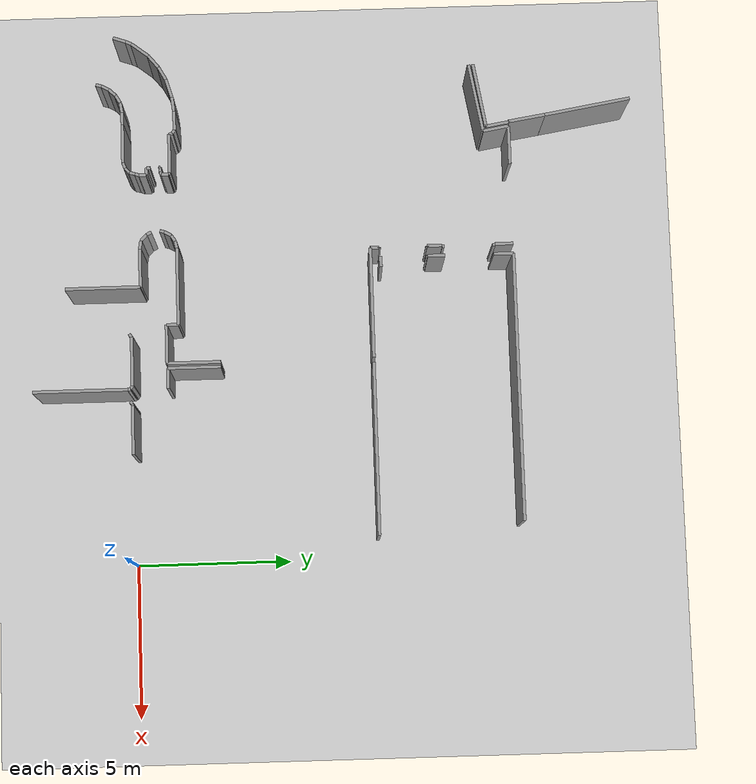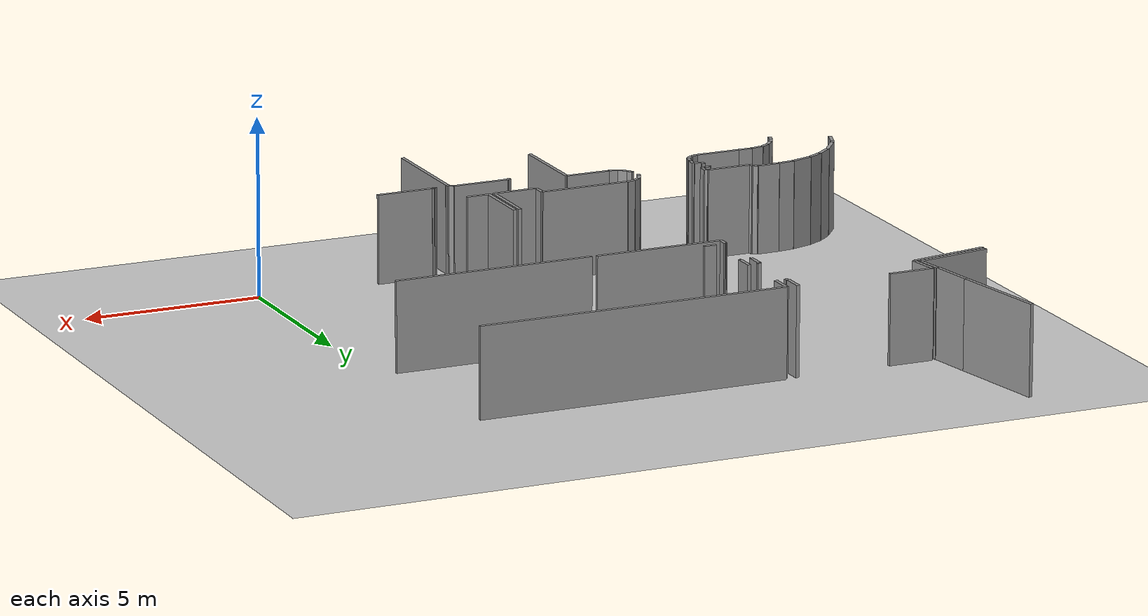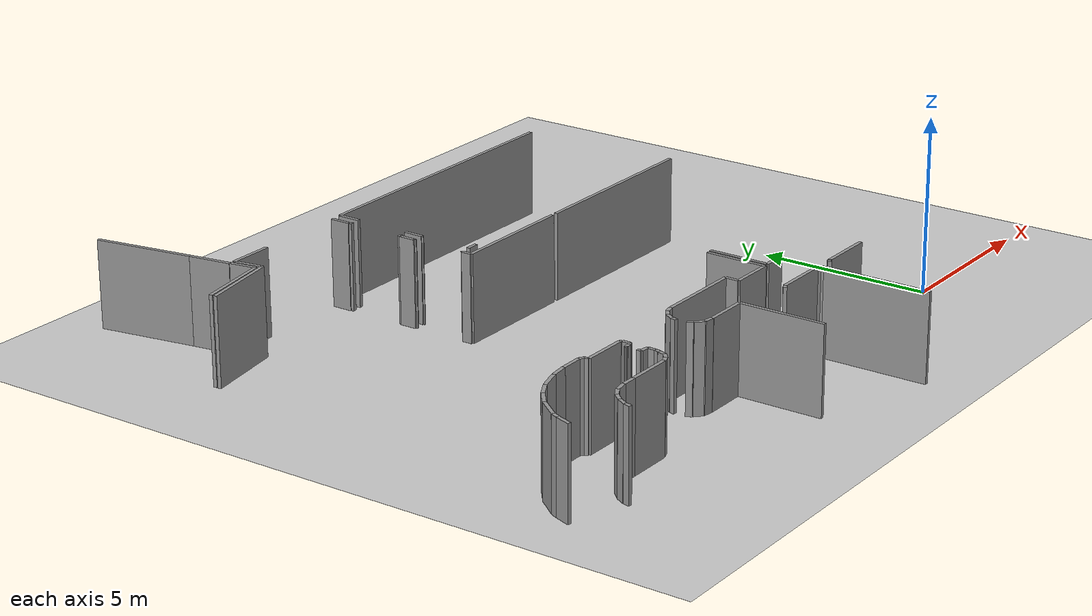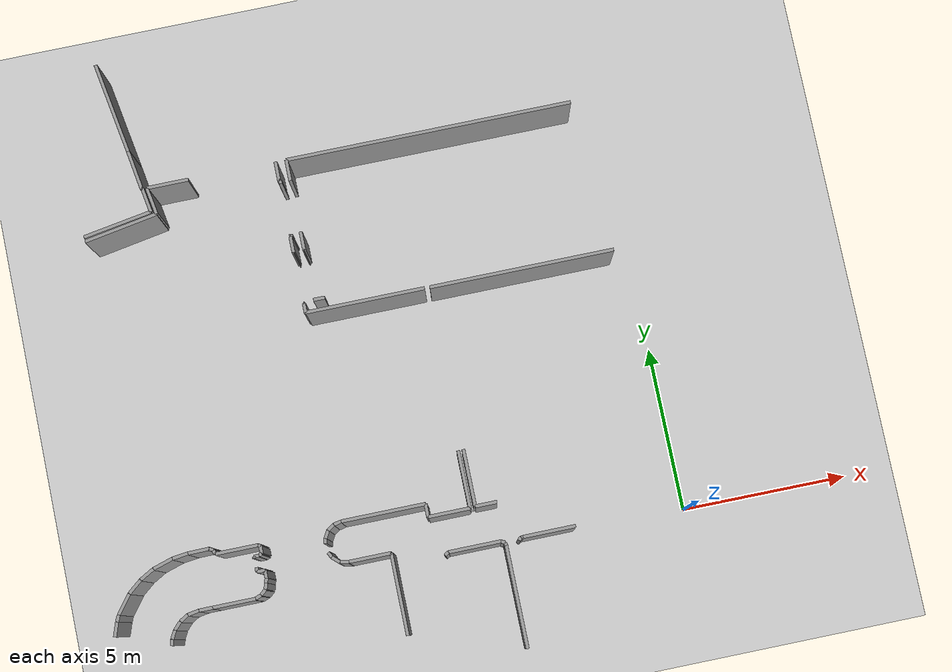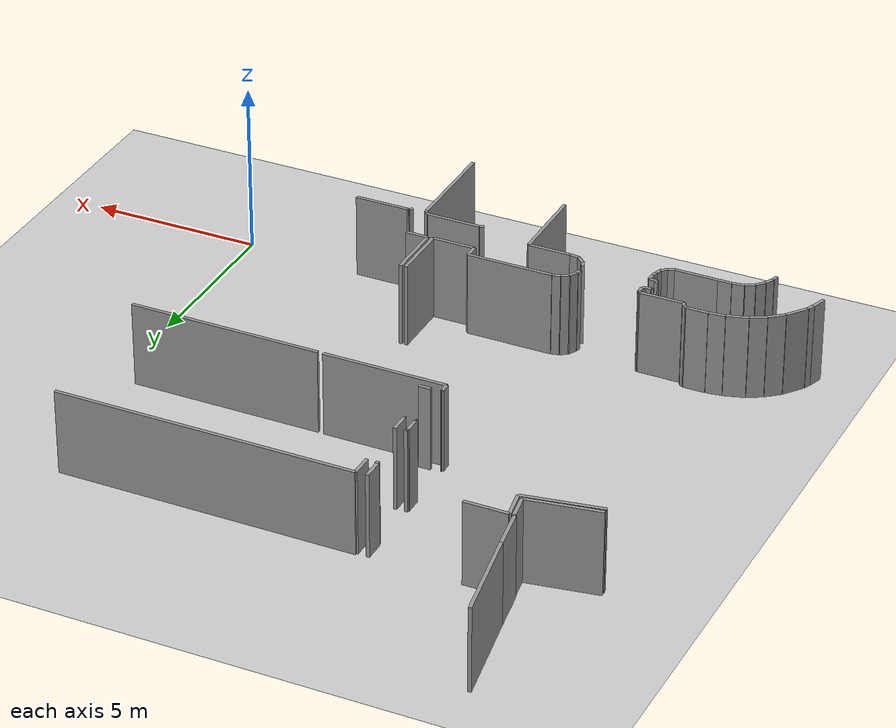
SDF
<sdf version="1.6">
 <world name="default">
  <model name="ground_plane">
   <static>1</static>
   <link name="link">
    <collision name="collision">
     <geometry><plane><normal>0 0 1</normal><size>100 100</size></plane></geometry>
     <surface><friction><ode><mu>100</mu><mu2>50</mu2></ode></friction></surface>
    </collision>
    <visual name="visual">
     <cast_shadows>0</cast_shadows>
     <geometry><plane><normal>0 0 1</normal><size>100 100</size></plane></geometry>
     <material>
      <script><uri>file://media/materials/scripts/gazebo.material</uri><name>Gazebo/Grey</name></script>
     </material>
    </visual>
   </link>
  </model>
  <model name="0510032261_A_40_1_103">
   <static>1</static>
   <link name="Wall_86">
    <collision name="Wall_86_Collision">
     <geometry><box><size>2.26686902757 0.1 2.5</size></box></geometry>
     <pose>1.13343451379 0 1.25 0 0 0</pose>
    </collision>
    <visual name="Wall_86_Visual">
     <pose>1.13343451379 0 1.25 0 0 0</pose>
     <geometry><box><size>2.26686902757 0.1 2.5</size></box></geometry>
     <material>
      <script><uri>file://media/materials/scripts/gazebo.material</uri><name>Gazebo/Grey</name></script>
      <ambient>1 1 1 1</ambient>
     </material>
    </visual>
    <pose>33.200635324 -5.21766200762 0 0 0 0.172659018626</pose>
   </link>
   <link name="Wall_87">
    <collision name="Wall_87_Collision">
     <geometry><box><size>0.841072962729 0.1 2.5</size></box></geometry>
     <pose>0.420536481364 0 1.25 0 0 0</pose>
    </collision>
    <visual name="Wall_87_Visual">
     <pose>0.420536481364 0 1.25 0 0 0</pose>
     <geometry><box><size>0.841072962729 0.1 2.5</size></box></geometry>
     <material>
      <script><uri>file://media/materials/scripts/gazebo.material</uri><name>Gazebo/Grey</name></script>
      <ambient>1 1 1 1</ambient>
     </material>
    </visual>
    <pose>35.4337992376 -4.82820838628 0 0 0 1.73974500082</pose>
   </link>
   <link name="Wall_88">
    <collision name="Wall_88_Collision">
     <geometry><box><size>1.26073697586 0.1 2.5</size></box></geometry>
     <pose>0.630368487929 0 1.25 0 0 0</pose>
    </collision>
    <visual name="Wall_88_Visual">
     <pose>0.630368487929 0 1.25 0 0 0</pose>
     <geometry><box><size>1.26073697586 0.1 2.5</size></box></geometry>
     <material>
      <script><uri>file://media/materials/scripts/gazebo.material</uri><name>Gazebo/Grey</name></script>
      <ambient>1 1 1 1</ambient>
     </material>
    </visual>
    <pose>35.2923761118 -3.99911054638 0 0 0 0.0</pose>
   </link>
   <link name="Wall_89">
    <collision name="Wall_89_Collision">
     <geometry><box><size>0.587420584498 0.1 2.5</size></box></geometry>
     <pose>0.293710292249 0 1.25 0 0 0</pose>
    </collision>
    <visual name="Wall_89_Visual">
     <pose>0.293710292249 0 1.25 0 0 0</pose>
     <geometry><box><size>0.587420584498 0.1 2.5</size></box></geometry>
     <material>
      <script><uri>file://media/materials/scripts/gazebo.material</uri><name>Gazebo/Grey</name></script>
      <ambient>1 1 1 1</ambient>
     </material>
    </visual>
    <pose>39.2010165184 -3.99911054638 0 0 0 -1.57079632679</pose>
   </link>
   <link name="Wall_90">
    <collision name="Wall_90_Collision">
     <geometry><box><size>0.0260482846252 0.1 2.5</size></box></geometry>
     <pose>0.0130241423126 0 1.25 0 0 0</pose>
    </collision>
    <visual name="Wall_90_Visual">
     <pose>0.0130241423126 0 1.25 0 0 0</pose>
     <geometry><box><size>0.0260482846252 0.1 2.5</size></box></geometry>
     <material>
      <script><uri>file://media/materials/scripts/gazebo.material</uri><name>Gazebo/Grey</name></script>
      <ambient>1 1 1 1</ambient>
     </material>
    </visual>
    <pose>39.2010165184 -4.58653113088 0 0 0 0.0</pose>
   </link>
   <link name="Wall_91">
    <collision name="Wall_91_Collision">
     <geometry><box><size>0.0874205844981 0.1 2.5</size></box></geometry>
     <pose>0.043710292249 0 1.25 0 0 0</pose>
    </collision>
    <visual name="Wall_91_Visual">
     <pose>0.043710292249 0 1.25 0 0 0</pose>
     <geometry><box><size>0.0874205844981 0.1 2.5</size></box></geometry>
     <material>
      <script><uri>file://media/materials/scripts/gazebo.material</uri><name>Gazebo/Grey</name></script>
      <ambient>1 1 1 1</ambient>
     </material>
    </visual>
    <pose>39.227064803 -4.58653113088 0 0 0 -1.57079632679</pose>
   </link>
   <link name="Wall_92">
    <collision name="Wall_92_Collision">
     <geometry><box><size>0.0689961880559 0.1 2.5</size></box></geometry>
     <pose>0.034498094028 0 1.25 0 0 0</pose>
    </collision>
    <visual name="Wall_92_Visual">
     <pose>0.034498094028 0 1.25 0 0 0</pose>
     <geometry><box><size>0.0689961880559 0.1 2.5</size></box></geometry>
     <material>
      <script><uri>file://media/materials/scripts/gazebo.material</uri><name>Gazebo/Grey</name></script>
      <ambient>1 1 1 1</ambient>
     </material>
    </visual>
    <pose>39.227064803 -6.2416772554 0 0 0 -1.57079632679</pose>
   </link>
   <link name="Wall_93">
    <collision name="Wall_93_Collision">
     <geometry><box><size>0.0274459974587 0.1 2.5</size></box></geometry>
     <pose>0.0137229987294 0 1.25 0 0 0</pose>
    </collision>
    <visual name="Wall_93_Visual">
     <pose>0.0137229987294 0 1.25 0 0 0</pose>
     <geometry><box><size>0.0274459974587 0.1 2.5</size></box></geometry>
     <material>
      <script><uri>file://media/materials/scripts/gazebo.material</uri><name>Gazebo/Grey</name></script>
      <ambient>1 1 1 1</ambient>
     </material>
    </visual>
    <pose>39.227064803 -6.31067344346 0 0 0 3.14159265359</pose>
   </link>
   <link name="Wall_94">
    <collision name="Wall_94_Collision">
     <geometry><box><size>0.482719186785 0.1 2.5</size></box></geometry>
     <pose>0.241359593393 0 1.25 0 0 0</pose>
    </collision>
    <visual name="Wall_94_Visual">
     <pose>0.241359593393 0 1.25 0 0 0</pose>
     <geometry><box><size>0.482719186785 0.1 2.5</size></box></geometry>
     <material>
      <script><uri>file://media/materials/scripts/gazebo.material</uri><name>Gazebo/Grey</name></script>
      <ambient>1 1 1 1</ambient>
     </material>
    </visual>
    <pose>39.1996188056 -6.31067344346 0 0 0 -1.57079632679</pose>
   </link>
   <link name="Wall_95">
    <collision name="Wall_95_Collision">
     <geometry><box><size>0.0247776365947 0.1 2.5</size></box></geometry>
     <pose>0.0123888182973 0 1.25 0 0 0</pose>
    </collision>
    <visual name="Wall_95_Visual">
     <pose>0.0123888182973 0 1.25 0 0 0</pose>
     <geometry><box><size>0.0247776365947 0.1 2.5</size></box></geometry>
     <material>
      <script><uri>file://media/materials/scripts/gazebo.material</uri><name>Gazebo/Grey</name></script>
      <ambient>1 1 1 1</ambient>
     </material>
    </visual>
    <pose>39.1996188056 -6.79339263024 0 0 0 0.0</pose>
   </link>
   <link name="Wall_96">
    <collision name="Wall_96_Collision">
     <geometry><box><size>0.0193138500635 0.1 2.5</size></box></geometry>
     <pose>0.00965692503176 0 1.25 0 0 0</pose>
    </collision>
    <visual name="Wall_96_Visual">
     <pose>0.00965692503176 0 1.25 0 0 0</pose>
     <geometry><box><size>0.0193138500635 0.1 2.5</size></box></geometry>
     <material>
      <script><uri>file://media/materials/scripts/gazebo.material</uri><name>Gazebo/Grey</name></script>
      <ambient>1 1 1 1</ambient>
     </material>
    </visual>
    <pose>39.2243964422 -8.35095298602 0 0 0 3.14159265359</pose>
   </link>
   <link name="Wall_97">
    <collision name="Wall_97_Collision">
     <geometry><box><size>0.287420584498 0.1 2.5</size></box></geometry>
     <pose>0.143710292249 0 1.25 0 0 0</pose>
    </collision>
    <visual name="Wall_97_Visual">
     <pose>0.143710292249 0 1.25 0 0 0</pose>
     <geometry><box><size>0.287420584498 0.1 2.5</size></box></geometry>
     <material>
      <script><uri>file://media/materials/scripts/gazebo.material</uri><name>Gazebo/Grey</name></script>
      <ambient>1 1 1 1</ambient>
     </material>
    </visual>
    <pose>39.2050825921 -8.35095298602 0 0 0 -1.57079632679</pose>
   </link>
   <link name="Wall_98">
    <collision name="Wall_98_Collision">
     <geometry><box><size>3.59428208386 0.1 2.5</size></box></geometry>
     <pose>1.79714104193 0 1.25 0 0 0</pose>
    </collision>
    <visual name="Wall_98_Visual">
     <pose>1.79714104193 0 1.25 0 0 0</pose>
     <geometry><box><size>3.59428208386 0.1 2.5</size></box></geometry>
     <material>
      <script><uri>file://media/materials/scripts/gazebo.material</uri><name>Gazebo/Grey</name></script>
      <ambient>1 1 1 1</ambient>
     </material>
    </visual>
    <pose>39.2050825921 -8.63837357052 0 0 0 0.0</pose>
   </link>
   <link name="Wall_99">
    <collision name="Wall_99_Collision">
     <geometry><box><size>1.7249047014 0.1 2.5</size></box></geometry>
     <pose>0.862452350699 0 1.25 0 0 0</pose>
    </collision>
    <visual name="Wall_99_Visual">
     <pose>0.862452350699 0 1.25 0 0 0</pose>
     <geometry><box><size>1.7249047014 0.1 2.5</size></box></geometry>
     <material>
      <script><uri>file://media/materials/scripts/gazebo.material</uri><name>Gazebo/Grey</name></script>
      <ambient>1 1 1 1</ambient>
     </material>
    </visual>
    <pose>42.799364676 -13.5702668361 0 0 0 -1.57079632679</pose>
   </link>
   <link name="Wall_100">
    <collision name="Wall_100_Collision">
     <geometry><box><size>1.2542566709 0.1 2.5</size></box></geometry>
     <pose>0.627128335451 0 1.25 0 0 0</pose>
    </collision>
    <visual name="Wall_100_Visual">
     <pose>0.627128335451 0 1.25 0 0 0</pose>
     <geometry><box><size>1.2542566709 0.1 2.5</size></box></geometry>
     <material>
      <script><uri>file://media/materials/scripts/gazebo.material</uri><name>Gazebo/Grey</name></script>
      <ambient>1 1 1 1</ambient>
     </material>
    </visual>
    <pose>42.799364676 -15.2951715375 0 0 0 3.14159265359</pose>
   </link>
   <link name="Wall_101">
    <collision name="Wall_101_Collision">
     <geometry><box><size>0.388691232529 0.1 2.5</size></box></geometry>
     <pose>0.194345616264 0 1.25 0 0 0</pose>
    </collision>
    <visual name="Wall_101_Visual">
     <pose>0.194345616264 0 1.25 0 0 0</pose>
     <geometry><box><size>0.388691232529 0.1 2.5</size></box></geometry>
     <material>
      <script><uri>file://media/materials/scripts/gazebo.material</uri><name>Gazebo/Grey</name></script>
      <ambient>1 1 1 1</ambient>
     </material>
    </visual>
    <pose>41.5451080051 -15.2951715375 0 0 0 1.57079632679</pose>
   </link>
   <link name="Wall_102">
    <collision name="Wall_102_Collision">
     <geometry><box><size>2.51639135959 0.1 2.5</size></box></geometry>
     <pose>1.2581956798 0 1.25 0 0 0</pose>
    </collision>
    <visual name="Wall_102_Visual">
     <pose>1.2581956798 0 1.25 0 0 0</pose>
     <geometry><box><size>2.51639135959 0.1 2.5</size></box></geometry>
     <material>
      <script><uri>file://media/materials/scripts/gazebo.material</uri><name>Gazebo/Grey</name></script>
      <ambient>1 1 1 1</ambient>
     </material>
    </visual>
    <pose>41.5451080051 -14.906480305 0 0 0 3.14159265359</pose>
   </link>
   <link name="Wall_103">
    <collision name="Wall_103_Collision">
     <geometry><box><size>0.234006937741 0.1 2.5</size></box></geometry>
     <pose>0.117003468871 0 1.25 0 0 0</pose>
    </collision>
    <visual name="Wall_103_Visual">
     <pose>0.117003468871 0 1.25 0 0 0</pose>
     <geometry><box><size>0.234006937741 0.1 2.5</size></box></geometry>
     <material>
      <script><uri>file://media/materials/scripts/gazebo.material</uri><name>Gazebo/Grey</name></script>
      <ambient>1 1 1 1</ambient>
     </material>
    </visual>
    <pose>39.0287166455 -14.906480305 0 0 0 -2.9209801328</pose>
   </link>
   <link name="Wall_104">
    <collision name="Wall_104_Collision">
     <geometry><box><size>0.231687956319 0.1 2.5</size></box></geometry>
     <pose>0.11584397816 0 1.25 0 0 0</pose>
    </collision>
    <visual name="Wall_104_Visual">
     <pose>0.11584397816 0 1.25 0 0 0</pose>
     <geometry><box><size>0.231687956319 0.1 2.5</size></box></geometry>
     <material>
      <script><uri>file://media/materials/scripts/gazebo.material</uri><name>Gazebo/Grey</name></script>
      <ambient>1 1 1 1</ambient>
     </material>
    </visual>
    <pose>38.8003811944 -14.9576874206 0 0 0 -2.57351742863</pose>
   </link>
   <link name="Wall_105">
    <collision name="Wall_105_Collision">
     <geometry><box><size>0.253036084387 0.1 2.5</size></box></geometry>
     <pose>0.126518042193 0 1.25 0 0 0</pose>
    </collision>
    <visual name="Wall_105_Visual">
     <pose>0.126518042193 0 1.25 0 0 0</pose>
     <geometry><box><size>0.253036084387 0.1 2.5</size></box></geometry>
     <material>
      <script><uri>file://media/materials/scripts/gazebo.material</uri><name>Gazebo/Grey</name></script>
      <ambient>1 1 1 1</ambient>
     </material>
    </visual>
    <pose>38.6050825921 -15.0823379924 0 0 0 -2.08589388017</pose>
   </link>
   <link name="Wall_106">
    <collision name="Wall_106_Collision">
     <geometry><box><size>0.146028198736 0.1 2.5</size></box></geometry>
     <pose>0.073014099368 0 1.25 0 0 0</pose>
    </collision>
    <visual name="Wall_106_Visual">
     <pose>0.073014099368 0 1.25 0 0 0</pose>
     <geometry><box><size>0.146028198736 0.1 2.5</size></box></geometry>
     <material>
      <script><uri>file://media/materials/scripts/gazebo.material</uri><name>Gazebo/Grey</name></script>
      <ambient>1 1 1 1</ambient>
     </material>
    </visual>
    <pose>38.4804320203 -15.3025412961 0 0 0 -1.82949299808</pose>
   </link>
   <link name="Wall_107">
    <collision name="Wall_107_Collision">
     <geometry><box><size>0.0415501905972 0.1 2.5</size></box></geometry>
     <pose>0.0207750952986 0 1.25 0 0 0</pose>
    </collision>
    <visual name="Wall_107_Visual">
     <pose>0.0207750952986 0 1.25 0 0 0</pose>
     <geometry><box><size>0.0415501905972 0.1 2.5</size></box></geometry>
     <material>
      <script><uri>file://media/materials/scripts/gazebo.material</uri><name>Gazebo/Grey</name></script>
      <ambient>1 1 1 1</ambient>
     </material>
    </visual>
    <pose>36.3288437103 -15.4437102922 0 0 0 1.57079632679</pose>
   </link>
   <link name="Wall_108">
    <collision name="Wall_108_Collision">
     <geometry><box><size>0.153843208513 0.1 2.5</size></box></geometry>
     <pose>0.0769216042564 0 1.25 0 0 0</pose>
    </collision>
    <visual name="Wall_108_Visual">
     <pose>0.0769216042564 0 1.25 0 0 0</pose>
     <geometry><box><size>0.153843208513 0.1 2.5</size></box></geometry>
     <material>
      <script><uri>file://media/materials/scripts/gazebo.material</uri><name>Gazebo/Grey</name></script>
      <ambient>1 1 1 1</ambient>
     </material>
    </visual>
    <pose>36.3288437103 -15.4021601017 0 0 0 0.0537117293032</pose>
   </link>
   <link name="Wall_109">
    <collision name="Wall_109_Collision">
     <geometry><box><size>0.09881982579 0.1 2.5</size></box></geometry>
     <pose>0.049409912895 0 1.25 0 0 0</pose>
    </collision>
    <visual name="Wall_109_Visual">
     <pose>0.049409912895 0 1.25 0 0 0</pose>
     <geometry><box><size>0.09881982579 0.1 2.5</size></box></geometry>
     <material>
      <script><uri>file://media/materials/scripts/gazebo.material</uri><name>Gazebo/Grey</name></script>
      <ambient>1 1 1 1</ambient>
     </material>
    </visual>
    <pose>36.4824650572 -15.3939008895 0 0 0 0.387669578374</pose>
   </link>
   <link name="Wall_110">
    <collision name="Wall_110_Collision">
     <geometry><box><size>0.220203303685 0.1 2.5</size></box></geometry>
     <pose>0.110101651842 0 1.25 0 0 0</pose>
    </collision>
    <visual name="Wall_110_Visual">
     <pose>0.110101651842 0 1.25 0 0 0</pose>
     <geometry><box><size>0.220203303685 0.1 2.5</size></box></geometry>
     <material>
      <script><uri>file://media/materials/scripts/gazebo.material</uri><name>Gazebo/Grey</name></script>
      <ambient>1 1 1 1</ambient>
     </material>
    </visual>
    <pose>36.5739517154 -15.3565438374 0 0 0 1.57079632679</pose>
   </link>
   <link name="Wall_111">
    <collision name="Wall_111_Collision">
     <geometry><box><size>0.0707723577634 0.1 2.5</size></box></geometry>
     <pose>0.0353861788817 0 1.25 0 0 0</pose>
    </collision>
    <visual name="Wall_111_Visual">
     <pose>0.0353861788817 0 1.25 0 0 0</pose>
     <geometry><box><size>0.0707723577634 0.1 2.5</size></box></geometry>
     <material>
      <script><uri>file://media/materials/scripts/gazebo.material</uri><name>Gazebo/Grey</name></script>
      <ambient>1 1 1 1</ambient>
     </material>
    </visual>
    <pose>36.5739517154 -15.1363405337 0 0 0 2.438808574</pose>
   </link>
   <link name="Wall_112">
    <collision name="Wall_112_Collision">
     <geometry><box><size>1.27115628971 0.1 2.5</size></box></geometry>
     <pose>0.635578144854 0 1.25 0 0 0</pose>
    </collision>
    <visual name="Wall_112_Visual">
     <pose>0.635578144854 0 1.25 0 0 0</pose>
     <geometry><box><size>1.27115628971 0.1 2.5</size></box></geometry>
     <material>
      <script><uri>file://media/materials/scripts/gazebo.material</uri><name>Gazebo/Grey</name></script>
      <ambient>1 1 1 1</ambient>
     </material>
    </visual>
    <pose>36.5199491741 -15.0905972046 0 0 0 3.14159265359</pose>
   </link>
   <link name="Wall_113">
    <collision name="Wall_113_Collision">
     <geometry><box><size>0.123423099919 0.1 2.5</size></box></geometry>
     <pose>0.0617115499596 0 1.25 0 0 0</pose>
    </collision>
    <visual name="Wall_113_Visual">
     <pose>0.0617115499596 0 1.25 0 0 0</pose>
     <geometry><box><size>0.123423099919 0.1 2.5</size></box></geometry>
     <material>
      <script><uri>file://media/materials/scripts/gazebo.material</uri><name>Gazebo/Grey</name></script>
      <ambient>1 1 1 1</ambient>
     </material>
    </visual>
    <pose>35.2487928844 -15.0905972046 0 0 0 1.91305849451</pose>
   </link>
   <link name="Wall_114">
    <collision name="Wall_114_Collision">
     <geometry><box><size>0.132588027473 0.1 2.5</size></box></geometry>
     <pose>0.0662940137367 0 1.25 0 0 0</pose>
    </collision>
    <visual name="Wall_114_Visual">
     <pose>0.0662940137367 0 1.25 0 0 0</pose>
     <geometry><box><size>0.132588027473 0.1 2.5</size></box></geometry>
     <material>
      <script><uri>file://media/materials/scripts/gazebo.material</uri><name>Gazebo/Grey</name></script>
      <ambient>1 1 1 1</ambient>
     </material>
    </visual>
    <pose>35.2073697586 -14.9743329098 0 0 0 2.57964105499</pose>
   </link>
   <link name="Wall_115">
    <collision name="Wall_115_Collision">
     <geometry><box><size>0.631440698633 0.1 2.5</size></box></geometry>
     <pose>0.315720349316 0 1.25 0 0 0</pose>
    </collision>
    <visual name="Wall_115_Visual">
     <pose>0.315720349316 0 1.25 0 0 0</pose>
     <geometry><box><size>0.631440698633 0.1 2.5</size></box></geometry>
     <material>
      <script><uri>file://media/materials/scripts/gazebo.material</uri><name>Gazebo/Grey</name></script>
      <ambient>1 1 1 1</ambient>
     </material>
    </visual>
    <pose>35.0951715375 -14.9036848793 0 0 0 -3.12831108403</pose>
   </link>
   <link name="Wall_116">
    <collision name="Wall_116_Collision">
     <geometry><box><size>0.472955696886 0.1 2.5</size></box></geometry>
     <pose>0.236477848443 0 1.25 0 0 0</pose>
    </collision>
    <visual name="Wall_116_Visual">
     <pose>0.236477848443 0 1.25 0 0 0</pose>
     <geometry><box><size>0.472955696886 0.1 2.5</size></box></geometry>
     <material>
      <script><uri>file://media/materials/scripts/gazebo.material</uri><name>Gazebo/Grey</name></script>
      <ambient>1 1 1 1</ambient>
     </material>
    </visual>
    <pose>34.4637865311 -14.9120711563 0 0 0 -3.01850394515</pose>
   </link>
   <link name="Wall_117">
    <collision name="Wall_117_Collision">
     <geometry><box><size>0.62541923379 0.1 2.5</size></box></geometry>
     <pose>0.312709616895 0 1.25 0 0 0</pose>
    </collision>
    <visual name="Wall_117_Visual">
     <pose>0.312709616895 0 1.25 0 0 0</pose>
     <geometry><box><size>0.62541923379 0.1 2.5</size></box></geometry>
     <material>
      <script><uri>file://media/materials/scripts/gazebo.material</uri><name>Gazebo/Grey</name></script>
      <ambient>1 1 1 1</ambient>
     </material>
    </visual>
    <pose>33.9944091487 -14.9701397713 0 0 0 -2.84490111992</pose>
   </link>
   <link name="Wall_118">
    <collision name="Wall_118_Collision">
     <geometry><box><size>0.485397426671 0.1 2.5</size></box></geometry>
     <pose>0.242698713335 0 1.25 0 0 0</pose>
    </collision>
    <visual name="Wall_118_Visual">
     <pose>0.242698713335 0 1.25 0 0 0</pose>
     <geometry><box><size>0.485397426671 0.1 2.5</size></box></geometry>
     <material>
      <script><uri>file://media/materials/scripts/gazebo.material</uri><name>Gazebo/Grey</name></script>
      <ambient>1 1 1 1</ambient>
     </material>
    </visual>
    <pose>33.3963151207 -15.1529860229 0 0 0 -2.63215497218</pose>
   </link>
   <link name="Wall_119">
    <collision name="Wall_119_Collision">
     <geometry><box><size>0.510533744751 0.1 2.5</size></box></geometry>
     <pose>0.255266872376 0 1.25 0 0 0</pose>
    </collision>
    <visual name="Wall_119_Visual">
     <pose>0.255266872376 0 1.25 0 0 0</pose>
     <geometry><box><size>0.510533744751 0.1 2.5</size></box></geometry>
     <material>
      <script><uri>file://media/materials/scripts/gazebo.material</uri><name>Gazebo/Grey</name></script>
      <ambient>1 1 1 1</ambient>
     </material>
    </visual>
    <pose>32.9725540025 -15.389707751 0 0 0 -2.4540244266</pose>
   </link>
   <link name="Wall_120">
    <collision name="Wall_120_Collision">
     <geometry><box><size>0.687826567013 0.1 2.5</size></box></geometry>
     <pose>0.343913283506 0 1.25 0 0 0</pose>
    </collision>
    <visual name="Wall_120_Visual">
     <pose>0.343913283506 0 1.25 0 0 0</pose>
     <geometry><box><size>0.687826567013 0.1 2.5</size></box></geometry>
     <material>
      <script><uri>file://media/materials/scripts/gazebo.material</uri><name>Gazebo/Grey</name></script>
      <ambient>1 1 1 1</ambient>
     </material>
    </visual>
    <pose>32.5780177891 -15.7137229987 0 0 0 -2.22637931886</pose>
   </link>
   <link name="Wall_121">
    <collision name="Wall_121_Collision">
     <geometry><box><size>0.203804735175 0.1 2.5</size></box></geometry>
     <pose>0.101902367588 0 1.25 0 0 0</pose>
    </collision>
    <visual name="Wall_121_Visual">
     <pose>0.101902367588 0 1.25 0 0 0</pose>
     <geometry><box><size>0.203804735175 0.1 2.5</size></box></geometry>
     <material>
      <script><uri>file://media/materials/scripts/gazebo.material</uri><name>Gazebo/Grey</name></script>
      <ambient>1 1 1 1</ambient>
     </material>
    </visual>
    <pose>32.158703939 -16.2589580686 0 0 0 -1.99009680966</pose>
   </link>
   <link name="Wall_122">
    <collision name="Wall_122_Collision">
     <geometry><box><size>0.438626559045 0.1 2.5</size></box></geometry>
     <pose>0.219313279523 0 1.25 0 0 0</pose>
    </collision>
    <visual name="Wall_122_Visual">
     <pose>0.219313279523 0 1.25 0 0 0</pose>
     <geometry><box><size>0.438626559045 0.1 2.5</size></box></geometry>
     <material>
      <script><uri>file://media/materials/scripts/gazebo.material</uri><name>Gazebo/Grey</name></script>
      <ambient>1 1 1 1</ambient>
     </material>
    </visual>
    <pose>32.0757306226 -16.4451080051 0 0 0 -1.89786013277</pose>
   </link>
   <link name="Wall_214">
    <collision name="Wall_214_Collision">
     <geometry><box><size>0.189509177421 0.1 2.5</size></box></geometry>
     <pose>0.0947545887104 0 1.25 0 0 0</pose>
    </collision>
    <visual name="Wall_214_Visual">
     <pose>0.0947545887104 0 1.25 0 0 0</pose>
     <geometry><box><size>0.189509177421 0.1 2.5</size></box></geometry>
     <material>
      <script><uri>file://media/materials/scripts/gazebo.material</uri><name>Gazebo/Grey</name></script>
      <ambient>1 1 1 1</ambient>
     </material>
    </visual>
    <pose>33.5043202033 -17.4458703939 0 0 0 1.3048383088</pose>
   </link>
   <link name="Wall_215">
    <collision name="Wall_215_Collision">
     <geometry><box><size>0.271246779998 0.1 2.5</size></box></geometry>
     <pose>0.135623389999 0 1.25 0 0 0</pose>
    </collision>
    <visual name="Wall_215_Visual">
     <pose>0.135623389999 0 1.25 0 0 0</pose>
     <geometry><box><size>0.271246779998 0.1 2.5</size></box></geometry>
     <material>
      <script><uri>file://media/materials/scripts/gazebo.material</uri><name>Gazebo/Grey</name></script>
      <ambient>1 1 1 1</ambient>
     </material>
    </visual>
    <pose>33.5541296061 -17.2630241423 0 0 0 1.08326390623</pose>
   </link>
   <link name="Wall_216">
    <collision name="Wall_216_Collision">
     <geometry><box><size>0.294926714503 0.1 2.5</size></box></geometry>
     <pose>0.147463357251 0 1.25 0 0 0</pose>
    </collision>
    <visual name="Wall_216_Visual">
     <pose>0.147463357251 0 1.25 0 0 0</pose>
     <geometry><box><size>0.294926714503 0.1 2.5</size></box></geometry>
     <material>
      <script><uri>file://media/materials/scripts/gazebo.material</uri><name>Gazebo/Grey</name></script>
      <ambient>1 1 1 1</ambient>
     </material>
    </visual>
    <pose>33.6811944091 -17.0233799238 0 0 0 0.815562738657</pose>
   </link>
   <link name="Wall_217">
    <collision name="Wall_217_Collision">
     <geometry><box><size>0.286063962972 0.1 2.5</size></box></geometry>
     <pose>0.143031981486 0 1.25 0 0 0</pose>
    </collision>
    <visual name="Wall_217_Visual">
     <pose>0.143031981486 0 1.25 0 0 0</pose>
     <geometry><box><size>0.286063962972 0.1 2.5</size></box></geometry>
     <material>
      <script><uri>file://media/materials/scripts/gazebo.material</uri><name>Gazebo/Grey</name></script>
      <ambient>1 1 1 1</ambient>
     </material>
    </visual>
    <pose>33.8833545108 -16.8086404066 0 0 0 0.533030284564</pose>
   </link>
   <link name="Wall_218">
    <collision name="Wall_218_Collision">
     <geometry><box><size>0.345864558767 0.1 2.5</size></box></geometry>
     <pose>0.172932279384 0 1.25 0 0 0</pose>
    </collision>
    <visual name="Wall_218_Visual">
     <pose>0.172932279384 0 1.25 0 0 0</pose>
     <geometry><box><size>0.345864558767 0.1 2.5</size></box></geometry>
     <material>
      <script><uri>file://media/materials/scripts/gazebo.material</uri><name>Gazebo/Grey</name></script>
      <ambient>1 1 1 1</ambient>
     </material>
    </visual>
    <pose>34.1297331639 -16.6632782719 0 0 0 0.164967485172</pose>
   </link>
   <link name="Wall_219">
    <collision name="Wall_219_Collision">
     <geometry><box><size>0.404320203304 0.1 2.5</size></box></geometry>
     <pose>0.202160101652 0 1.25 0 0 0</pose>
    </collision>
    <visual name="Wall_219_Visual">
     <pose>0.202160101652 0 1.25 0 0 0</pose>
     <geometry><box><size>0.404320203304 0.1 2.5</size></box></geometry>
     <material>
      <script><uri>file://media/materials/scripts/gazebo.material</uri><name>Gazebo/Grey</name></script>
      <ambient>1 1 1 1</ambient>
     </material>
    </visual>
    <pose>34.4709021601 -16.606480305 0 0 0 0.0</pose>
   </link>
   <link name="Wall_220">
    <collision name="Wall_220_Collision">
     <geometry><box><size>1.26975857687 0.1 2.5</size></box></geometry>
     <pose>0.634879288437 0 1.25 0 0 0</pose>
    </collision>
    <visual name="Wall_220_Visual">
     <pose>0.634879288437 0 1.25 0 0 0</pose>
     <geometry><box><size>1.26975857687 0.1 2.5</size></box></geometry>
     <material>
      <script><uri>file://media/materials/scripts/gazebo.material</uri><name>Gazebo/Grey</name></script>
      <ambient>1 1 1 1</ambient>
     </material>
    </visual>
    <pose>34.8752223634 -16.606480305 0 0 0 0.0</pose>
   </link>
   <link name="Wall_221">
    <collision name="Wall_221_Collision">
     <geometry><box><size>0.198766151859 0.1 2.5</size></box></geometry>
     <pose>0.0993830759294 0 1.25 0 0 0</pose>
    </collision>
    <visual name="Wall_221_Visual">
     <pose>0.0993830759294 0 1.25 0 0 0</pose>
     <geometry><box><size>0.198766151859 0.1 2.5</size></box></geometry>
     <material>
      <script><uri>file://media/materials/scripts/gazebo.material</uri><name>Gazebo/Grey</name></script>
      <ambient>1 1 1 1</ambient>
     </material>
    </visual>
    <pose>36.1449809403 -16.606480305 0 0 0 0.365429756277</pose>
   </link>
   <link name="Wall_222">
    <collision name="Wall_222_Collision">
     <geometry><box><size>0.20220238561 0.1 2.5</size></box></geometry>
     <pose>0.101101192805 0 1.25 0 0 0</pose>
    </collision>
    <visual name="Wall_222_Visual">
     <pose>0.101101192805 0 1.25 0 0 0</pose>
     <geometry><box><size>0.20220238561 0.1 2.5</size></box></geometry>
     <material>
      <script><uri>file://media/materials/scripts/gazebo.material</uri><name>Gazebo/Grey</name></script>
      <ambient>1 1 1 1</ambient>
     </material>
    </visual>
    <pose>36.3306226175 -16.5354510801 0 0 0 0.722258692736</pose>
   </link>
   <link name="Wall_223">
    <collision name="Wall_223_Collision">
     <geometry><box><size>0.191058484588 0.1 2.5</size></box></geometry>
     <pose>0.0955292422938 0 1.25 0 0 0</pose>
    </collision>
    <visual name="Wall_223_Visual">
     <pose>0.0955292422938 0 1.25 0 0 0</pose>
     <geometry><box><size>0.191058484588 0.1 2.5</size></box></geometry>
     <material>
      <script><uri>file://media/materials/scripts/gazebo.material</uri><name>Gazebo/Grey</name></script>
      <ambient>1 1 1 1</ambient>
     </material>
    </visual>
    <pose>36.4823379924 -16.4017789072 0 0 0 1.30291105464</pose>
   </link>
   <link name="Wall_224">
    <collision name="Wall_224_Collision">
     <geometry><box><size>0.135935467985 0.1 2.5</size></box></geometry>
     <pose>0.0679677339924 0 1.25 0 0 0</pose>
    </collision>
    <visual name="Wall_224_Visual">
     <pose>0.0679677339924 0 1.25 0 0 0</pose>
     <geometry><box><size>0.135935467985 0.1 2.5</size></box></geometry>
     <material>
      <script><uri>file://media/materials/scripts/gazebo.material</uri><name>Gazebo/Grey</name></script>
      <ambient>1 1 1 1</ambient>
     </material>
    </visual>
    <pose>36.532909784 -16.2175349428 0 0 0 1.27387804127</pose>
   </link>
   <link name="Wall_225">
    <collision name="Wall_225_Collision">
     <geometry><box><size>0.228843710292 0.1 2.5</size></box></geometry>
     <pose>0.114421855146 0 1.25 0 0 0</pose>
    </collision>
    <visual name="Wall_225_Visual">
     <pose>0.114421855146 0 1.25 0 0 0</pose>
     <geometry><box><size>0.228843710292 0.1 2.5</size></box></geometry>
     <material>
      <script><uri>file://media/materials/scripts/gazebo.material</uri><name>Gazebo/Grey</name></script>
      <ambient>1 1 1 1</ambient>
     </material>
    </visual>
    <pose>36.5726810673 -16.0875476493 0 0 0 1.57079632679</pose>
   </link>
   <link name="Wall_226">
    <collision name="Wall_226_Collision">
     <geometry><box><size>0.230378895373 0.1 2.5</size></box></geometry>
     <pose>0.115189447687 0 1.25 0 0 0</pose>
    </collision>
    <visual name="Wall_226_Visual">
     <pose>0.115189447687 0 1.25 0 0 0</pose>
     <geometry><box><size>0.230378895373 0.1 2.5</size></box></geometry>
     <material>
      <script><uri>file://media/materials/scripts/gazebo.material</uri><name>Gazebo/Grey</name></script>
      <ambient>1 1 1 1</ambient>
     </material>
    </visual>
    <pose>36.5726810673 -15.858703939 0 0 0 3.04713771819</pose>
   </link>
   <link name="Wall_227">
    <collision name="Wall_227_Collision">
     <geometry><box><size>0.11626429479 0.1 2.5</size></box></geometry>
     <pose>0.0581321473952 0 1.25 0 0 0</pose>
    </collision>
    <visual name="Wall_227_Visual">
     <pose>0.0581321473952 0 1.25 0 0 0</pose>
     <geometry><box><size>0.11626429479 0.1 2.5</size></box></geometry>
     <material>
      <script><uri>file://media/materials/scripts/gazebo.material</uri><name>Gazebo/Grey</name></script>
      <ambient>1 1 1 1</ambient>
     </material>
    </visual>
    <pose>36.3433290978 -15.8369758577 0 0 0 1.57079632679</pose>
   </link>
   <link name="Wall_228">
    <collision name="Wall_228_Collision">
     <geometry><box><size>0.174628880681 0.1 2.5</size></box></geometry>
     <pose>0.0873144403407 0 1.25 0 0 0</pose>
    </collision>
    <visual name="Wall_228_Visual">
     <pose>0.0873144403407 0 1.25 0 0 0</pose>
     <geometry><box><size>0.174628880681 0.1 2.5</size></box></geometry>
     <material>
      <script><uri>file://media/materials/scripts/gazebo.material</uri><name>Gazebo/Grey</name></script>
      <ambient>1 1 1 1</ambient>
     </material>
    </visual>
    <pose>38.481321474 -15.7207115629 0 0 0 -1.11495851671</pose>
   </link>
   <link name="Wall_229">
    <collision name="Wall_229_Collision">
     <geometry><box><size>0.275995779497 0.1 2.5</size></box></geometry>
     <pose>0.137997889748 0 1.25 0 0 0</pose>
    </collision>
    <visual name="Wall_229_Visual">
     <pose>0.137997889748 0 1.25 0 0 0</pose>
     <geometry><box><size>0.275995779497 0.1 2.5</size></box></geometry>
     <material>
      <script><uri>file://media/materials/scripts/gazebo.material</uri><name>Gazebo/Grey</name></script>
      <ambient>1 1 1 1</ambient>
     </material>
    </visual>
    <pose>38.5581956798 -15.8775095299 0 0 0 -0.742739145439</pose>
   </link>
   <link name="Wall_230">
    <collision name="Wall_230_Collision">
     <geometry><box><size>0.267299802793 0.1 2.5</size></box></geometry>
     <pose>0.133649901397 0 1.25 0 0 0</pose>
    </collision>
    <visual name="Wall_230_Visual">
     <pose>0.133649901397 0 1.25 0 0 0</pose>
     <geometry><box><size>0.267299802793 0.1 2.5</size></box></geometry>
     <material>
      <script><uri>file://media/materials/scripts/gazebo.material</uri><name>Gazebo/Grey</name></script>
      <ambient>1 1 1 1</ambient>
     </material>
    </visual>
    <pose>38.7614993647 -16.0641677255 0 0 0 -0.165226826836</pose>
   </link>
   <link name="Wall_231">
    <collision name="Wall_231_Collision">
     <geometry><box><size>1.25209656925 0.1 2.5</size></box></geometry>
     <pose>0.626048284625 0 1.25 0 0 0</pose>
    </collision>
    <visual name="Wall_231_Visual">
     <pose>0.626048284625 0 1.25 0 0 0</pose>
     <geometry><box><size>1.25209656925 0.1 2.5</size></box></geometry>
     <material>
      <script><uri>file://media/materials/scripts/gazebo.material</uri><name>Gazebo/Grey</name></script>
      <ambient>1 1 1 1</ambient>
     </material>
    </visual>
    <pose>39.025158831 -16.1081321474 0 0 0 0.0</pose>
   </link>
   <link name="Wall_232">
    <collision name="Wall_232_Collision">
     <geometry><box><size>2.44218551461 0.1 2.5</size></box></geometry>
     <pose>1.22109275731 0 1.25 0 0 0</pose>
    </collision>
    <visual name="Wall_232_Visual">
     <pose>1.22109275731 0 1.25 0 0 0</pose>
     <geometry><box><size>2.44218551461 0.1 2.5</size></box></geometry>
     <material>
      <script><uri>file://media/materials/scripts/gazebo.material</uri><name>Gazebo/Grey</name></script>
      <ambient>1 1 1 1</ambient>
     </material>
    </visual>
    <pose>40.2772554003 -16.1081321474 0 0 0 -1.57079632679</pose>
   </link>
   <link name="Wall_235">
    <collision name="Wall_235_Collision">
     <geometry><box><size>0.343964421855 0.1 2.5</size></box></geometry>
     <pose>0.171982210928 0 1.25 0 0 0</pose>
    </collision>
    <visual name="Wall_235_Visual">
     <pose>0.171982210928 0 1.25 0 0 0</pose>
     <geometry><box><size>0.343964421855 0.1 2.5</size></box></geometry>
     <material>
      <script><uri>file://media/materials/scripts/gazebo.material</uri><name>Gazebo/Grey</name></script>
      <ambient>1 1 1 1</ambient>
     </material>
    </visual>
    <pose>39.8472681067 -8.31359593393 0 0 0 3.14159265359</pose>
   </link>
   <link name="Wall_236">
    <collision name="Wall_236_Collision">
     <geometry><box><size>0.0238881829733 0.1 2.5</size></box></geometry>
     <pose>0.0119440914867 0 1.25 0 0 0</pose>
    </collision>
    <visual name="Wall_236_Visual">
     <pose>0.0119440914867 0 1.25 0 0 0</pose>
     <geometry><box><size>0.0238881829733 0.1 2.5</size></box></geometry>
     <material>
      <script><uri>file://media/materials/scripts/gazebo.material</uri><name>Gazebo/Grey</name></script>
      <ambient>1 1 1 1</ambient>
     </material>
    </visual>
    <pose>39.5033036849 -6.7872935197 0 0 0 0.0</pose>
   </link>
   <link name="Wall_237">
    <collision name="Wall_237_Collision">
     <geometry><box><size>0.559339263024 0.1 2.5</size></box></geometry>
     <pose>0.279669631512 0 1.25 0 0 0</pose>
    </collision>
    <visual name="Wall_237_Visual">
     <pose>0.279669631512 0 1.25 0 0 0</pose>
     <geometry><box><size>0.559339263024 0.1 2.5</size></box></geometry>
     <material>
      <script><uri>file://media/materials/scripts/gazebo.material</uri><name>Gazebo/Grey</name></script>
      <ambient>1 1 1 1</ambient>
     </material>
    </visual>
    <pose>39.5271918679 -6.7872935197 0 0 0 1.57079632679</pose>
   </link>
   <link name="Wall_238">
    <collision name="Wall_238_Collision">
     <geometry><box><size>0.642693773825 0.1 2.5</size></box></geometry>
     <pose>0.321346886912 0 1.25 0 0 0</pose>
    </collision>
    <visual name="Wall_238_Visual">
     <pose>0.321346886912 0 1.25 0 0 0</pose>
     <geometry><box><size>0.642693773825 0.1 2.5</size></box></geometry>
     <material>
      <script><uri>file://media/materials/scripts/gazebo.material</uri><name>Gazebo/Grey</name></script>
      <ambient>1 1 1 1</ambient>
     </material>
    </visual>
    <pose>39.5271918679 -4.64904701398 0 0 0 1.57079632679</pose>
   </link>
   <link name="Wall_239">
    <collision name="Wall_239_Collision">
     <geometry><box><size>8.67954256671 0.1 2.5</size></box></geometry>
     <pose>4.33977128335 0 1.25 0 0 0</pose>
    </collision>
    <visual name="Wall_239_Visual">
     <pose>4.33977128335 0 1.25 0 0 0</pose>
     <geometry><box><size>8.67954256671 0.1 2.5</size></box></geometry>
     <material>
      <script><uri>file://media/materials/scripts/gazebo.material</uri><name>Gazebo/Grey</name></script>
      <ambient>1 1 1 1</ambient>
     </material>
    </visual>
    <pose>39.5271918679 -4.00635324015 0 0 0 0.0</pose>
   </link>
   <link name="Wall_306">
    <collision name="Wall_306_Collision">
     <geometry><box><size>0.130658272392 0.1 2.5</size></box></geometry>
     <pose>0.0653291361961 0 1.25 0 0 0</pose>
    </collision>
    <visual name="Wall_306_Visual">
     <pose>0.0653291361961 0 1.25 0 0 0</pose>
     <geometry><box><size>0.130658272392 0.1 2.5</size></box></geometry>
     <material>
      <script><uri>file://media/materials/scripts/gazebo.material</uri><name>Gazebo/Grey</name></script>
      <ambient>1 1 1 1</ambient>
     </material>
    </visual>
    <pose>41.8057179161 -16.4946632783 0 0 0 0.57127904814</pose>
   </link>
   <link name="Wall_307">
    <collision name="Wall_307_Collision">
     <geometry><box><size>1.57026683609 0.1 2.5</size></box></geometry>
     <pose>0.785133418043 0 1.25 0 0 0</pose>
    </collision>
    <visual name="Wall_307_Visual">
     <pose>0.785133418043 0 1.25 0 0 0</pose>
     <geometry><box><size>1.57026683609 0.1 2.5</size></box></geometry>
     <material>
      <script><uri>file://media/materials/scripts/gazebo.material</uri><name>Gazebo/Grey</name></script>
      <ambient>1 1 1 1</ambient>
     </material>
    </visual>
    <pose>41.9156289708 -16.4240152478 0 0 0 0.0</pose>
   </link>
   <link name="Wall_308">
    <collision name="Wall_308_Collision">
     <geometry><box><size>0.127531860794 0.1 2.5</size></box></geometry>
     <pose>0.0637659303972 0 1.25 0 0 0</pose>
    </collision>
    <visual name="Wall_308_Visual">
     <pose>0.0637659303972 0 1.25 0 0 0</pose>
     <geometry><box><size>0.127531860794 0.1 2.5</size></box></geometry>
     <material>
      <script><uri>file://media/materials/scripts/gazebo.material</uri><name>Gazebo/Grey</name></script>
      <ambient>1 1 1 1</ambient>
     </material>
    </visual>
    <pose>43.4858958069 -16.4240152478 0 0 0 -0.497517843312</pose>
   </link>
   <link name="Wall_309">
    <collision name="Wall_309_Collision">
     <geometry><box><size>0.0914769513416 0.1 2.5</size></box></geometry>
     <pose>0.0457384756708 0 1.25 0 0 0</pose>
    </collision>
    <visual name="Wall_309_Visual">
     <pose>0.0457384756708 0 1.25 0 0 0</pose>
     <geometry><box><size>0.0914769513416 0.1 2.5</size></box></geometry>
     <material>
      <script><uri>file://media/materials/scripts/gazebo.material</uri><name>Gazebo/Grey</name></script>
      <ambient>1 1 1 1</ambient>
     </material>
    </visual>
    <pose>43.5979669632 -16.4848792884 0 0 0 -1.41318347384</pose>
   </link>
   <link name="Wall_310">
    <collision name="Wall_310_Collision">
     <geometry><box><size>3.05590851334 0.1 2.5</size></box></geometry>
     <pose>1.52795425667 0 1.25 0 0 0</pose>
    </collision>
    <visual name="Wall_310_Visual">
     <pose>1.52795425667 0 1.25 0 0 0</pose>
     <geometry><box><size>3.05590851334 0.1 2.5</size></box></geometry>
     <material>
      <script><uri>file://media/materials/scripts/gazebo.material</uri><name>Gazebo/Grey</name></script>
      <ambient>1 1 1 1</ambient>
     </material>
    </visual>
    <pose>43.6123252859 -16.5752223634 0 0 0 -1.57079632679</pose>
   </link>
   <link name="Wall_321">
    <collision name="Wall_321_Collision">
     <geometry><box><size>0.107117362344 0.1 2.5</size></box></geometry>
     <pose>0.0535586811719 0 1.25 0 0 0</pose>
    </collision>
    <visual name="Wall_321_Visual">
     <pose>0.0535586811719 0 1.25 0 0 0</pose>
     <geometry><box><size>0.107117362344 0.1 2.5</size></box></geometry>
     <material>
      <script><uri>file://media/materials/scripts/gazebo.material</uri><name>Gazebo/Grey</name></script>
      <ambient>1 1 1 1</ambient>
     </material>
    </visual>
    <pose>44.0049555273 -16.5027954257 0 0 0 0.70142104427</pose>
   </link>
   <link name="Wall_322">
    <collision name="Wall_322_Collision">
     <geometry><box><size>0.0566329979621 0.1 2.5</size></box></geometry>
     <pose>0.028316498981 0 1.25 0 0 0</pose>
    </collision>
    <visual name="Wall_322_Visual">
     <pose>0.028316498981 0 1.25 0 0 0</pose>
     <geometry><box><size>0.0566329979621 0.1 2.5</size></box></geometry>
     <material>
      <script><uri>file://media/materials/scripts/gazebo.material</uri><name>Gazebo/Grey</name></script>
      <ambient>1 1 1 1</ambient>
     </material>
    </visual>
    <pose>44.0867852605 -16.4336721728 0 0 0 0.0561207827013</pose>
   </link>
   <link name="Wall_323">
    <collision name="Wall_323_Collision">
     <geometry><box><size>1.57674714104 0.1 2.5</size></box></geometry>
     <pose>0.788373570521 0 1.25 0 0 0</pose>
    </collision>
    <visual name="Wall_323_Visual">
     <pose>0.788373570521 0 1.25 0 0 0</pose>
     <geometry><box><size>1.57674714104 0.1 2.5</size></box></geometry>
     <material>
      <script><uri>file://media/materials/scripts/gazebo.material</uri><name>Gazebo/Grey</name></script>
      <ambient>1 1 1 1</ambient>
     </material>
    </visual>
    <pose>44.1433290978 -16.4304955527 0 0 0 0.0</pose>
   </link>
   <link name="Wall_383">
    <collision name="Wall_383_Collision">
     <geometry><box><size>0.650698856417 0.1 2.5</size></box></geometry>
     <pose>0.325349428208 0 1.25 0 0 0</pose>
    </collision>
    <visual name="Wall_383_Visual">
     <pose>0.325349428208 0 1.25 0 0 0</pose>
     <geometry><box><size>0.650698856417 0.1 2.5</size></box></geometry>
     <material>
      <script><uri>file://media/materials/scripts/gazebo.material</uri><name>Gazebo/Grey</name></script>
      <ambient>1 1 1 1</ambient>
     </material>
    </visual>
    <pose>43.6058449809 -15.2734434562 0 0 0 3.14159265359</pose>
   </link>
   <link name="Wall_384">
    <collision name="Wall_384_Collision">
     <geometry><box><size>1.71194409149 0.1 2.5</size></box></geometry>
     <pose>0.855972045743 0 1.25 0 0 0</pose>
    </collision>
    <visual name="Wall_384_Visual">
     <pose>0.855972045743 0 1.25 0 0 0</pose>
     <geometry><box><size>1.71194409149 0.1 2.5</size></box></geometry>
     <material>
      <script><uri>file://media/materials/scripts/gazebo.material</uri><name>Gazebo/Grey</name></script>
      <ambient>1 1 1 1</ambient>
     </material>
    </visual>
    <pose>42.9551461245 -15.2734434562 0 0 0 1.57079632679</pose>
   </link>
   <link name="Wall_385">
    <collision name="Wall_385_Collision">
     <geometry><box><size>5.5790343075 0.1 2.5</size></box></geometry>
     <pose>2.78951715375 0 1.25 0 0 0</pose>
    </collision>
    <visual name="Wall_385_Visual">
     <pose>2.78951715375 0 1.25 0 0 0</pose>
     <geometry><box><size>5.5790343075 0.1 2.5</size></box></geometry>
     <material>
      <script><uri>file://media/materials/scripts/gazebo.material</uri><name>Gazebo/Grey</name></script>
      <ambient>1 1 1 1</ambient>
     </material>
    </visual>
    <pose>42.9551461245 -8.64459974587 0 0 0 0.0</pose>
   </link>
   <link name="Wall_679">
    <collision name="Wall_679_Collision">
     <geometry><box><size>2.83602183483 0.1 2.5</size></box></geometry>
     <pose>1.41801091741 0 1.25 0 0 0</pose>
    </collision>
    <visual name="Wall_679_Visual">
     <pose>1.41801091741 0 1.25 0 0 0</pose>
     <geometry><box><size>2.83602183483 0.1 2.5</size></box></geometry>
     <material>
      <script><uri>file://media/materials/scripts/gazebo.material</uri><name>Gazebo/Grey</name></script>
      <ambient>1 1 1 1</ambient>
     </material>
    </visual>
    <pose>34.4804320203 -0.0 0 0 0 -1.40407138599</pose>
   </link>
   <link name="Wall_680">
    <collision name="Wall_680_Collision">
     <geometry><box><size>1.20883911604 0.1 2.5</size></box></geometry>
     <pose>0.604419558022 0 1.25 0 0 0</pose>
    </collision>
    <visual name="Wall_680_Visual">
     <pose>0.604419558022 0 1.25 0 0 0</pose>
     <geometry><box><size>1.20883911604 0.1 2.5</size></box></geometry>
     <material>
      <script><uri>file://media/materials/scripts/gazebo.material</uri><name>Gazebo/Grey</name></script>
      <ambient>1 1 1 1</ambient>
     </material>
    </visual>
    <pose>34.9510800508 -2.79669631512 0 0 0 -1.41342394553</pose>
   </link>
   <link name="Wall_681">
    <collision name="Wall_681_Collision">
     <geometry><box><size>0.0198221092757 0.1 2.5</size></box></geometry>
     <pose>0.00991105463786 0 1.25 0 0 0</pose>
    </collision>
    <visual name="Wall_681_Visual">
     <pose>0.00991105463786 0 1.25 0 0 0</pose>
     <geometry><box><size>0.0198221092757 0.1 2.5</size></box></geometry>
     <material>
      <script><uri>file://media/materials/scripts/gazebo.material</uri><name>Gazebo/Grey</name></script>
      <ambient>1 1 1 1</ambient>
     </material>
    </visual>
    <pose>35.1405336722 -3.99059720457 0 0 0 0.0</pose>
   </link>
   <link name="Wall_682">
    <collision name="Wall_682_Collision">
     <geometry><box><size>0.751013366252 0.1 2.5</size></box></geometry>
     <pose>0.375506683126 0 1.25 0 0 0</pose>
    </collision>
    <visual name="Wall_682_Visual">
     <pose>0.375506683126 0 1.25 0 0 0</pose>
     <geometry><box><size>0.751013366252 0.1 2.5</size></box></geometry>
     <material>
      <script><uri>file://media/materials/scripts/gazebo.material</uri><name>Gazebo/Grey</name></script>
      <ambient>1 1 1 1</ambient>
     </material>
    </visual>
    <pose>35.1603557814 -3.99059720457 0 0 0 -1.40662116932</pose>
   </link>
   <link name="Wall_683">
    <collision name="Wall_683_Collision">
     <geometry><box><size>2.12037165444 0.1 2.5</size></box></geometry>
     <pose>1.06018582722 0 1.25 0 0 0</pose>
    </collision>
    <visual name="Wall_683_Visual">
     <pose>1.06018582722 0 1.25 0 0 0</pose>
     <geometry><box><size>2.12037165444 0.1 2.5</size></box></geometry>
     <material>
      <script><uri>file://media/materials/scripts/gazebo.material</uri><name>Gazebo/Grey</name></script>
      <ambient>1 1 1 1</ambient>
     </material>
    </visual>
    <pose>35.2831003812 -4.73151207116 0 0 0 -2.97561643092</pose>
   </link>
   <pose>-49.15 16.5314485388 0 0 0 0</pose>
  </model>
 </world>
</sdf>
